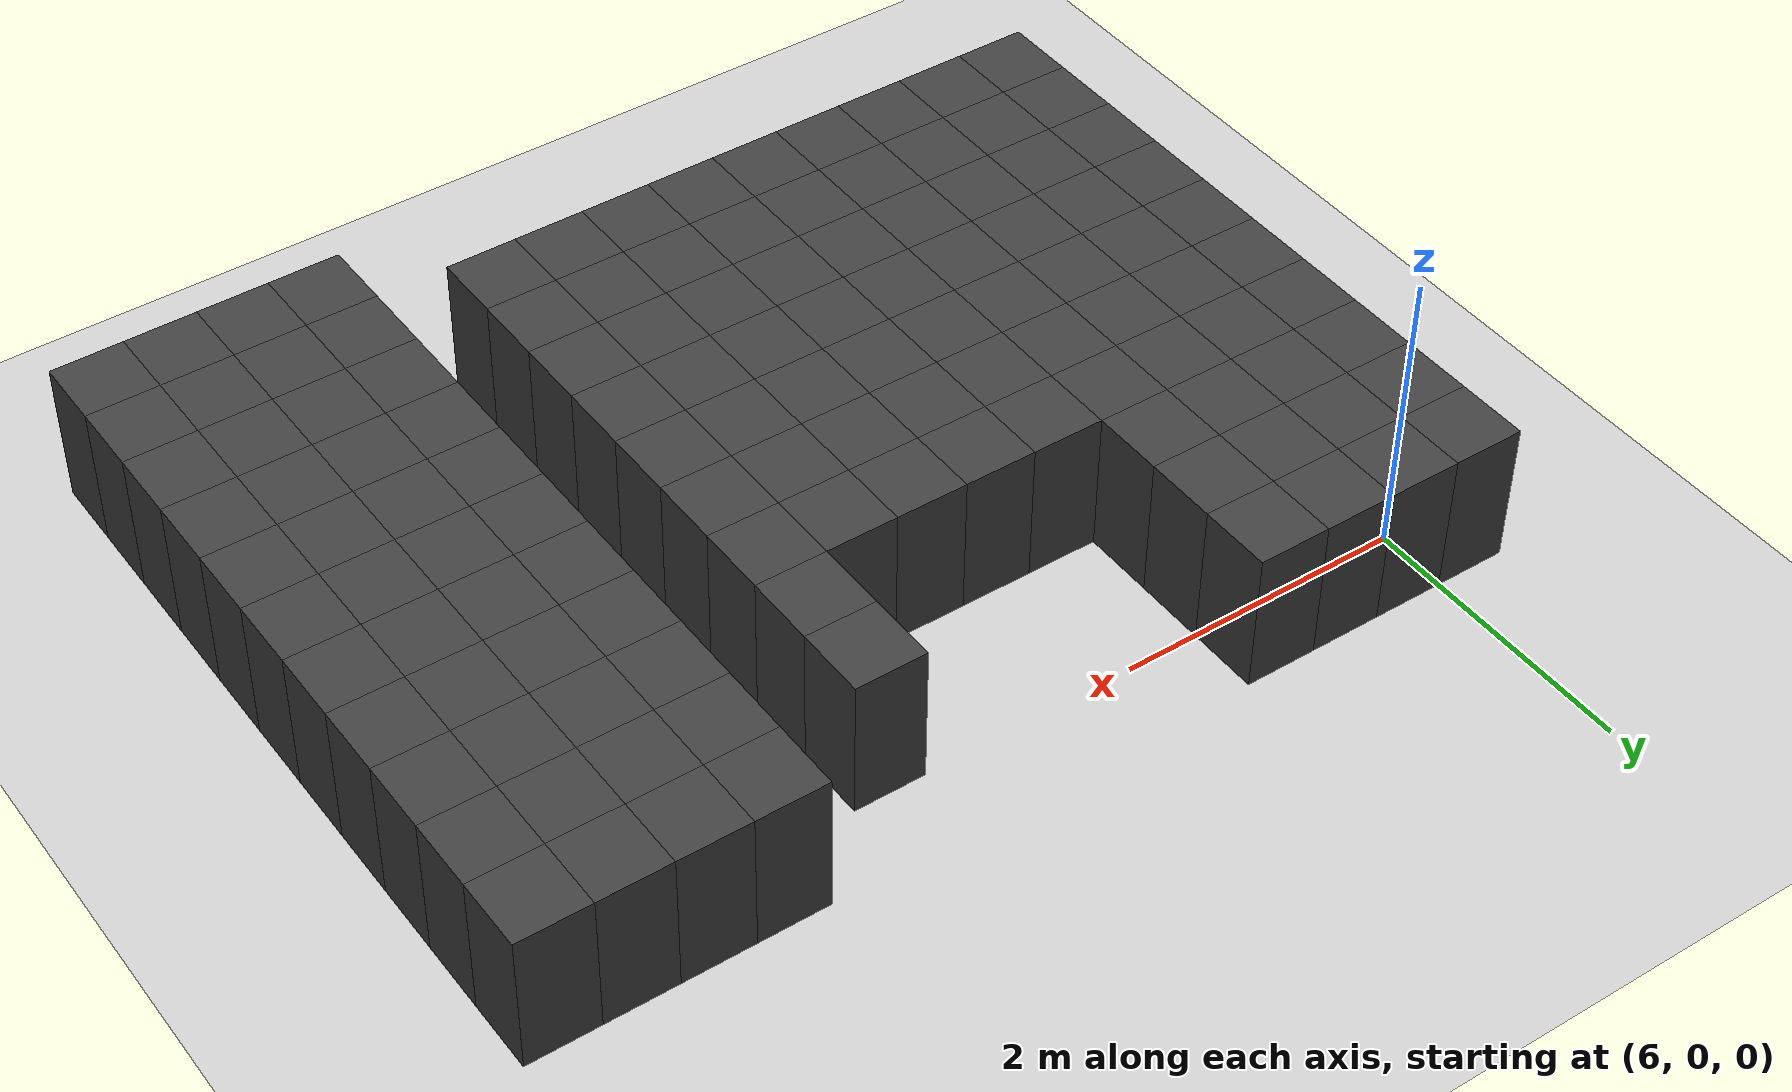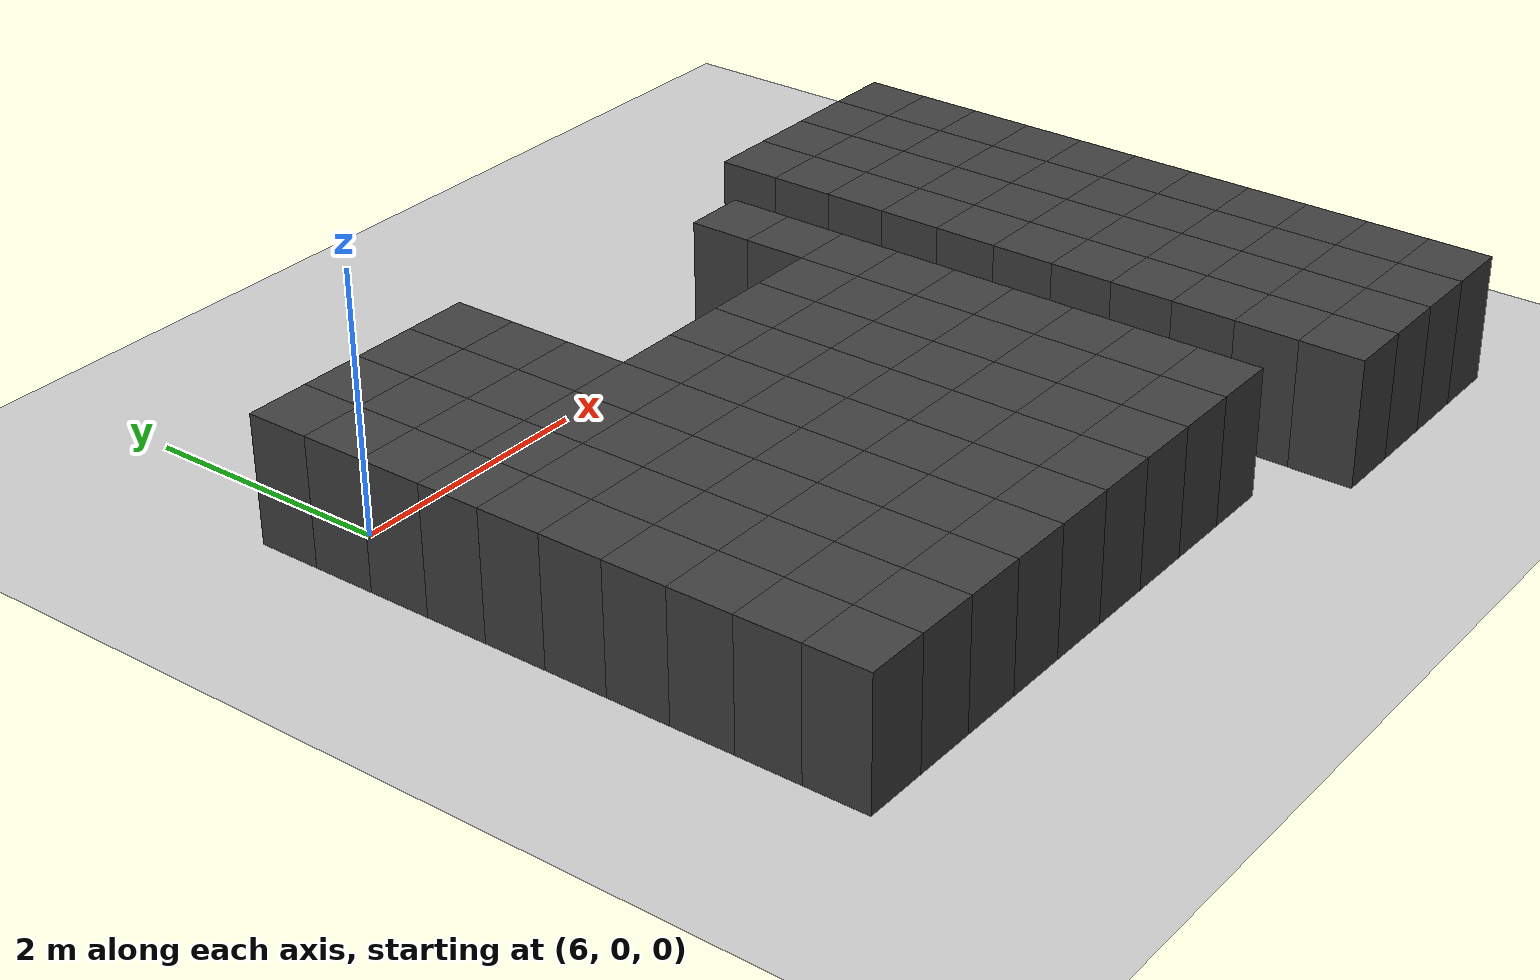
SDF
<sdf version="1.7">
 <world name="map_12885">
  <model name="ground_plane">
   <static>true</static>
   <link name="link">
    <collision name="collision">
     <geometry><plane><normal>0 0 1</normal><size>200 200</size></plane></geometry>
    </collision>
    <visual name="visual">
     <geometry><plane><normal>0 0 1</normal><size>200 200</size></plane></geometry>
     <material><ambient>0.8 0.8 0.8 1</ambient><diffuse>0.8 0.8 0.8 1</diffuse></material>
    </visual>
   </link>
  </model>
  <model name="maze_environment">
   <static>true</static>
   <link name="wall_1039">
    <pose>5.750 0.250 0.500 0 0 0</pose>
    <collision name="col"><geometry><box><size>0.5 0.5 1.0</size></box></geometry></collision>
    <visual name="vis">
     <geometry><box><size>0.5 0.5 1.0</size></box></geometry>
     <material><ambient>0.15 0.15 0.15 1</ambient><diffuse>0.25 0.25 0.25 1</diffuse></material>
    </visual>
   </link>
   <link name="wall_1040">
    <pose>6.250 0.250 0.500 0 0 0</pose>
    <collision name="col"><geometry><box><size>0.5 0.5 1.0</size></box></geometry></collision>
    <visual name="vis">
     <geometry><box><size>0.5 0.5 1.0</size></box></geometry>
     <material><ambient>0.15 0.15 0.15 1</ambient><diffuse>0.25 0.25 0.25 1</diffuse></material>
    </visual>
   </link>
   <link name="wall_1041">
    <pose>6.750 0.250 0.500 0 0 0</pose>
    <collision name="col"><geometry><box><size>0.5 0.5 1.0</size></box></geometry></collision>
    <visual name="vis">
     <geometry><box><size>0.5 0.5 1.0</size></box></geometry>
     <material><ambient>0.15 0.15 0.15 1</ambient><diffuse>0.25 0.25 0.25 1</diffuse></material>
    </visual>
   </link>
   <link name="wall_1042">
    <pose>7.250 0.250 0.500 0 0 0</pose>
    <collision name="col"><geometry><box><size>0.5 0.5 1.0</size></box></geometry></collision>
    <visual name="vis">
     <geometry><box><size>0.5 0.5 1.0</size></box></geometry>
     <material><ambient>0.15 0.15 0.15 1</ambient><diffuse>0.25 0.25 0.25 1</diffuse></material>
    </visual>
   </link>
   <link name="wall_1043">
    <pose>10.750 0.250 0.500 0 0 0</pose>
    <collision name="col"><geometry><box><size>0.5 0.5 1.0</size></box></geometry></collision>
    <visual name="vis">
     <geometry><box><size>0.5 0.5 1.0</size></box></geometry>
     <material><ambient>0.15 0.15 0.15 1</ambient><diffuse>0.25 0.25 0.25 1</diffuse></material>
    </visual>
   </link>
   <link name="wall_1044">
    <pose>11.250 0.250 0.500 0 0 0</pose>
    <collision name="col"><geometry><box><size>0.5 0.5 1.0</size></box></geometry></collision>
    <visual name="vis">
     <geometry><box><size>0.5 0.5 1.0</size></box></geometry>
     <material><ambient>0.15 0.15 0.15 1</ambient><diffuse>0.25 0.25 0.25 1</diffuse></material>
    </visual>
   </link>
   <link name="wall_1045">
    <pose>11.750 0.250 0.500 0 0 0</pose>
    <collision name="col"><geometry><box><size>0.5 0.5 1.0</size></box></geometry></collision>
    <visual name="vis">
     <geometry><box><size>0.5 0.5 1.0</size></box></geometry>
     <material><ambient>0.15 0.15 0.15 1</ambient><diffuse>0.25 0.25 0.25 1</diffuse></material>
    </visual>
   </link>
   <link name="wall_1046">
    <pose>12.250 0.250 0.500 0 0 0</pose>
    <collision name="col"><geometry><box><size>0.5 0.5 1.0</size></box></geometry></collision>
    <visual name="vis">
     <geometry><box><size>0.5 0.5 1.0</size></box></geometry>
     <material><ambient>0.15 0.15 0.15 1</ambient><diffuse>0.25 0.25 0.25 1</diffuse></material>
    </visual>
   </link>
   <link name="wall_1072">
    <pose>5.750 -0.250 0.500 0 0 0</pose>
    <collision name="col"><geometry><box><size>0.5 0.5 1.0</size></box></geometry></collision>
    <visual name="vis">
     <geometry><box><size>0.5 0.5 1.0</size></box></geometry>
     <material><ambient>0.15 0.15 0.15 1</ambient><diffuse>0.25 0.25 0.25 1</diffuse></material>
    </visual>
   </link>
   <link name="wall_1073">
    <pose>6.250 -0.250 0.500 0 0 0</pose>
    <collision name="col"><geometry><box><size>0.5 0.5 1.0</size></box></geometry></collision>
    <visual name="vis">
     <geometry><box><size>0.5 0.5 1.0</size></box></geometry>
     <material><ambient>0.15 0.15 0.15 1</ambient><diffuse>0.25 0.25 0.25 1</diffuse></material>
    </visual>
   </link>
   <link name="wall_1074">
    <pose>6.750 -0.250 0.500 0 0 0</pose>
    <collision name="col"><geometry><box><size>0.5 0.5 1.0</size></box></geometry></collision>
    <visual name="vis">
     <geometry><box><size>0.5 0.5 1.0</size></box></geometry>
     <material><ambient>0.15 0.15 0.15 1</ambient><diffuse>0.25 0.25 0.25 1</diffuse></material>
    </visual>
   </link>
   <link name="wall_1075">
    <pose>7.250 -0.250 0.500 0 0 0</pose>
    <collision name="col"><geometry><box><size>0.5 0.5 1.0</size></box></geometry></collision>
    <visual name="vis">
     <geometry><box><size>0.5 0.5 1.0</size></box></geometry>
     <material><ambient>0.15 0.15 0.15 1</ambient><diffuse>0.25 0.25 0.25 1</diffuse></material>
    </visual>
   </link>
   <link name="wall_1076">
    <pose>9.750 -0.250 0.500 0 0 0</pose>
    <collision name="col"><geometry><box><size>0.5 0.5 1.0</size></box></geometry></collision>
    <visual name="vis">
     <geometry><box><size>0.5 0.5 1.0</size></box></geometry>
     <material><ambient>0.15 0.15 0.15 1</ambient><diffuse>0.25 0.25 0.25 1</diffuse></material>
    </visual>
   </link>
   <link name="wall_1077">
    <pose>10.750 -0.250 0.500 0 0 0</pose>
    <collision name="col"><geometry><box><size>0.5 0.5 1.0</size></box></geometry></collision>
    <visual name="vis">
     <geometry><box><size>0.5 0.5 1.0</size></box></geometry>
     <material><ambient>0.15 0.15 0.15 1</ambient><diffuse>0.25 0.25 0.25 1</diffuse></material>
    </visual>
   </link>
   <link name="wall_1078">
    <pose>11.250 -0.250 0.500 0 0 0</pose>
    <collision name="col"><geometry><box><size>0.5 0.5 1.0</size></box></geometry></collision>
    <visual name="vis">
     <geometry><box><size>0.5 0.5 1.0</size></box></geometry>
     <material><ambient>0.15 0.15 0.15 1</ambient><diffuse>0.25 0.25 0.25 1</diffuse></material>
    </visual>
   </link>
   <link name="wall_1079">
    <pose>11.750 -0.250 0.500 0 0 0</pose>
    <collision name="col"><geometry><box><size>0.5 0.5 1.0</size></box></geometry></collision>
    <visual name="vis">
     <geometry><box><size>0.5 0.5 1.0</size></box></geometry>
     <material><ambient>0.15 0.15 0.15 1</ambient><diffuse>0.25 0.25 0.25 1</diffuse></material>
    </visual>
   </link>
   <link name="wall_1080">
    <pose>12.250 -0.250 0.500 0 0 0</pose>
    <collision name="col"><geometry><box><size>0.5 0.5 1.0</size></box></geometry></collision>
    <visual name="vis">
     <geometry><box><size>0.5 0.5 1.0</size></box></geometry>
     <material><ambient>0.15 0.15 0.15 1</ambient><diffuse>0.25 0.25 0.25 1</diffuse></material>
    </visual>
   </link>
   <link name="wall_1106">
    <pose>5.750 -0.750 0.500 0 0 0</pose>
    <collision name="col"><geometry><box><size>0.5 0.5 1.0</size></box></geometry></collision>
    <visual name="vis">
     <geometry><box><size>0.5 0.5 1.0</size></box></geometry>
     <material><ambient>0.15 0.15 0.15 1</ambient><diffuse>0.25 0.25 0.25 1</diffuse></material>
    </visual>
   </link>
   <link name="wall_1107">
    <pose>6.250 -0.750 0.500 0 0 0</pose>
    <collision name="col"><geometry><box><size>0.5 0.5 1.0</size></box></geometry></collision>
    <visual name="vis">
     <geometry><box><size>0.5 0.5 1.0</size></box></geometry>
     <material><ambient>0.15 0.15 0.15 1</ambient><diffuse>0.25 0.25 0.25 1</diffuse></material>
    </visual>
   </link>
   <link name="wall_1108">
    <pose>6.750 -0.750 0.500 0 0 0</pose>
    <collision name="col"><geometry><box><size>0.5 0.5 1.0</size></box></geometry></collision>
    <visual name="vis">
     <geometry><box><size>0.5 0.5 1.0</size></box></geometry>
     <material><ambient>0.15 0.15 0.15 1</ambient><diffuse>0.25 0.25 0.25 1</diffuse></material>
    </visual>
   </link>
   <link name="wall_1109">
    <pose>7.250 -0.750 0.500 0 0 0</pose>
    <collision name="col"><geometry><box><size>0.5 0.5 1.0</size></box></geometry></collision>
    <visual name="vis">
     <geometry><box><size>0.5 0.5 1.0</size></box></geometry>
     <material><ambient>0.15 0.15 0.15 1</ambient><diffuse>0.25 0.25 0.25 1</diffuse></material>
    </visual>
   </link>
   <link name="wall_1110">
    <pose>9.750 -0.750 0.500 0 0 0</pose>
    <collision name="col"><geometry><box><size>0.5 0.5 1.0</size></box></geometry></collision>
    <visual name="vis">
     <geometry><box><size>0.5 0.5 1.0</size></box></geometry>
     <material><ambient>0.15 0.15 0.15 1</ambient><diffuse>0.25 0.25 0.25 1</diffuse></material>
    </visual>
   </link>
   <link name="wall_1111">
    <pose>10.750 -0.750 0.500 0 0 0</pose>
    <collision name="col"><geometry><box><size>0.5 0.5 1.0</size></box></geometry></collision>
    <visual name="vis">
     <geometry><box><size>0.5 0.5 1.0</size></box></geometry>
     <material><ambient>0.15 0.15 0.15 1</ambient><diffuse>0.25 0.25 0.25 1</diffuse></material>
    </visual>
   </link>
   <link name="wall_1112">
    <pose>11.250 -0.750 0.500 0 0 0</pose>
    <collision name="col"><geometry><box><size>0.5 0.5 1.0</size></box></geometry></collision>
    <visual name="vis">
     <geometry><box><size>0.5 0.5 1.0</size></box></geometry>
     <material><ambient>0.15 0.15 0.15 1</ambient><diffuse>0.25 0.25 0.25 1</diffuse></material>
    </visual>
   </link>
   <link name="wall_1113">
    <pose>11.750 -0.750 0.500 0 0 0</pose>
    <collision name="col"><geometry><box><size>0.5 0.5 1.0</size></box></geometry></collision>
    <visual name="vis">
     <geometry><box><size>0.5 0.5 1.0</size></box></geometry>
     <material><ambient>0.15 0.15 0.15 1</ambient><diffuse>0.25 0.25 0.25 1</diffuse></material>
    </visual>
   </link>
   <link name="wall_1114">
    <pose>12.250 -0.750 0.500 0 0 0</pose>
    <collision name="col"><geometry><box><size>0.5 0.5 1.0</size></box></geometry></collision>
    <visual name="vis">
     <geometry><box><size>0.5 0.5 1.0</size></box></geometry>
     <material><ambient>0.15 0.15 0.15 1</ambient><diffuse>0.25 0.25 0.25 1</diffuse></material>
    </visual>
   </link>
   <link name="wall_1135">
    <pose>5.750 -1.250 0.500 0 0 0</pose>
    <collision name="col"><geometry><box><size>0.5 0.5 1.0</size></box></geometry></collision>
    <visual name="vis">
     <geometry><box><size>0.5 0.5 1.0</size></box></geometry>
     <material><ambient>0.15 0.15 0.15 1</ambient><diffuse>0.25 0.25 0.25 1</diffuse></material>
    </visual>
   </link>
   <link name="wall_1136">
    <pose>6.250 -1.250 0.500 0 0 0</pose>
    <collision name="col"><geometry><box><size>0.5 0.5 1.0</size></box></geometry></collision>
    <visual name="vis">
     <geometry><box><size>0.5 0.5 1.0</size></box></geometry>
     <material><ambient>0.15 0.15 0.15 1</ambient><diffuse>0.25 0.25 0.25 1</diffuse></material>
    </visual>
   </link>
   <link name="wall_1137">
    <pose>6.750 -1.250 0.500 0 0 0</pose>
    <collision name="col"><geometry><box><size>0.5 0.5 1.0</size></box></geometry></collision>
    <visual name="vis">
     <geometry><box><size>0.5 0.5 1.0</size></box></geometry>
     <material><ambient>0.15 0.15 0.15 1</ambient><diffuse>0.25 0.25 0.25 1</diffuse></material>
    </visual>
   </link>
   <link name="wall_1138">
    <pose>7.250 -1.250 0.500 0 0 0</pose>
    <collision name="col"><geometry><box><size>0.5 0.5 1.0</size></box></geometry></collision>
    <visual name="vis">
     <geometry><box><size>0.5 0.5 1.0</size></box></geometry>
     <material><ambient>0.15 0.15 0.15 1</ambient><diffuse>0.25 0.25 0.25 1</diffuse></material>
    </visual>
   </link>
   <link name="wall_1139">
    <pose>7.750 -1.250 0.500 0 0 0</pose>
    <collision name="col"><geometry><box><size>0.5 0.5 1.0</size></box></geometry></collision>
    <visual name="vis">
     <geometry><box><size>0.5 0.5 1.0</size></box></geometry>
     <material><ambient>0.15 0.15 0.15 1</ambient><diffuse>0.25 0.25 0.25 1</diffuse></material>
    </visual>
   </link>
   <link name="wall_1140">
    <pose>8.250 -1.250 0.500 0 0 0</pose>
    <collision name="col"><geometry><box><size>0.5 0.5 1.0</size></box></geometry></collision>
    <visual name="vis">
     <geometry><box><size>0.5 0.5 1.0</size></box></geometry>
     <material><ambient>0.15 0.15 0.15 1</ambient><diffuse>0.25 0.25 0.25 1</diffuse></material>
    </visual>
   </link>
   <link name="wall_1141">
    <pose>8.750 -1.250 0.500 0 0 0</pose>
    <collision name="col"><geometry><box><size>0.5 0.5 1.0</size></box></geometry></collision>
    <visual name="vis">
     <geometry><box><size>0.5 0.5 1.0</size></box></geometry>
     <material><ambient>0.15 0.15 0.15 1</ambient><diffuse>0.25 0.25 0.25 1</diffuse></material>
    </visual>
   </link>
   <link name="wall_1142">
    <pose>9.250 -1.250 0.500 0 0 0</pose>
    <collision name="col"><geometry><box><size>0.5 0.5 1.0</size></box></geometry></collision>
    <visual name="vis">
     <geometry><box><size>0.5 0.5 1.0</size></box></geometry>
     <material><ambient>0.15 0.15 0.15 1</ambient><diffuse>0.25 0.25 0.25 1</diffuse></material>
    </visual>
   </link>
   <link name="wall_1143">
    <pose>9.750 -1.250 0.500 0 0 0</pose>
    <collision name="col"><geometry><box><size>0.5 0.5 1.0</size></box></geometry></collision>
    <visual name="vis">
     <geometry><box><size>0.5 0.5 1.0</size></box></geometry>
     <material><ambient>0.15 0.15 0.15 1</ambient><diffuse>0.25 0.25 0.25 1</diffuse></material>
    </visual>
   </link>
   <link name="wall_1144">
    <pose>10.750 -1.250 0.500 0 0 0</pose>
    <collision name="col"><geometry><box><size>0.5 0.5 1.0</size></box></geometry></collision>
    <visual name="vis">
     <geometry><box><size>0.5 0.5 1.0</size></box></geometry>
     <material><ambient>0.15 0.15 0.15 1</ambient><diffuse>0.25 0.25 0.25 1</diffuse></material>
    </visual>
   </link>
   <link name="wall_1145">
    <pose>11.250 -1.250 0.500 0 0 0</pose>
    <collision name="col"><geometry><box><size>0.5 0.5 1.0</size></box></geometry></collision>
    <visual name="vis">
     <geometry><box><size>0.5 0.5 1.0</size></box></geometry>
     <material><ambient>0.15 0.15 0.15 1</ambient><diffuse>0.25 0.25 0.25 1</diffuse></material>
    </visual>
   </link>
   <link name="wall_1146">
    <pose>11.750 -1.250 0.500 0 0 0</pose>
    <collision name="col"><geometry><box><size>0.5 0.5 1.0</size></box></geometry></collision>
    <visual name="vis">
     <geometry><box><size>0.5 0.5 1.0</size></box></geometry>
     <material><ambient>0.15 0.15 0.15 1</ambient><diffuse>0.25 0.25 0.25 1</diffuse></material>
    </visual>
   </link>
   <link name="wall_1147">
    <pose>12.250 -1.250 0.500 0 0 0</pose>
    <collision name="col"><geometry><box><size>0.5 0.5 1.0</size></box></geometry></collision>
    <visual name="vis">
     <geometry><box><size>0.5 0.5 1.0</size></box></geometry>
     <material><ambient>0.15 0.15 0.15 1</ambient><diffuse>0.25 0.25 0.25 1</diffuse></material>
    </visual>
   </link>
   <link name="wall_1180">
    <pose>5.750 -1.750 0.500 0 0 0</pose>
    <collision name="col"><geometry><box><size>0.5 0.5 1.0</size></box></geometry></collision>
    <visual name="vis">
     <geometry><box><size>0.5 0.5 1.0</size></box></geometry>
     <material><ambient>0.15 0.15 0.15 1</ambient><diffuse>0.25 0.25 0.25 1</diffuse></material>
    </visual>
   </link>
   <link name="wall_1181">
    <pose>6.250 -1.750 0.500 0 0 0</pose>
    <collision name="col"><geometry><box><size>0.5 0.5 1.0</size></box></geometry></collision>
    <visual name="vis">
     <geometry><box><size>0.5 0.5 1.0</size></box></geometry>
     <material><ambient>0.15 0.15 0.15 1</ambient><diffuse>0.25 0.25 0.25 1</diffuse></material>
    </visual>
   </link>
   <link name="wall_1182">
    <pose>6.750 -1.750 0.500 0 0 0</pose>
    <collision name="col"><geometry><box><size>0.5 0.5 1.0</size></box></geometry></collision>
    <visual name="vis">
     <geometry><box><size>0.5 0.5 1.0</size></box></geometry>
     <material><ambient>0.15 0.15 0.15 1</ambient><diffuse>0.25 0.25 0.25 1</diffuse></material>
    </visual>
   </link>
   <link name="wall_1183">
    <pose>7.250 -1.750 0.500 0 0 0</pose>
    <collision name="col"><geometry><box><size>0.5 0.5 1.0</size></box></geometry></collision>
    <visual name="vis">
     <geometry><box><size>0.5 0.5 1.0</size></box></geometry>
     <material><ambient>0.15 0.15 0.15 1</ambient><diffuse>0.25 0.25 0.25 1</diffuse></material>
    </visual>
   </link>
   <link name="wall_1184">
    <pose>7.750 -1.750 0.500 0 0 0</pose>
    <collision name="col"><geometry><box><size>0.5 0.5 1.0</size></box></geometry></collision>
    <visual name="vis">
     <geometry><box><size>0.5 0.5 1.0</size></box></geometry>
     <material><ambient>0.15 0.15 0.15 1</ambient><diffuse>0.25 0.25 0.25 1</diffuse></material>
    </visual>
   </link>
   <link name="wall_1185">
    <pose>8.250 -1.750 0.500 0 0 0</pose>
    <collision name="col"><geometry><box><size>0.5 0.5 1.0</size></box></geometry></collision>
    <visual name="vis">
     <geometry><box><size>0.5 0.5 1.0</size></box></geometry>
     <material><ambient>0.15 0.15 0.15 1</ambient><diffuse>0.25 0.25 0.25 1</diffuse></material>
    </visual>
   </link>
   <link name="wall_1186">
    <pose>8.750 -1.750 0.500 0 0 0</pose>
    <collision name="col"><geometry><box><size>0.5 0.5 1.0</size></box></geometry></collision>
    <visual name="vis">
     <geometry><box><size>0.5 0.5 1.0</size></box></geometry>
     <material><ambient>0.15 0.15 0.15 1</ambient><diffuse>0.25 0.25 0.25 1</diffuse></material>
    </visual>
   </link>
   <link name="wall_1187">
    <pose>9.250 -1.750 0.500 0 0 0</pose>
    <collision name="col"><geometry><box><size>0.5 0.5 1.0</size></box></geometry></collision>
    <visual name="vis">
     <geometry><box><size>0.5 0.5 1.0</size></box></geometry>
     <material><ambient>0.15 0.15 0.15 1</ambient><diffuse>0.25 0.25 0.25 1</diffuse></material>
    </visual>
   </link>
   <link name="wall_1188">
    <pose>9.750 -1.750 0.500 0 0 0</pose>
    <collision name="col"><geometry><box><size>0.5 0.5 1.0</size></box></geometry></collision>
    <visual name="vis">
     <geometry><box><size>0.5 0.5 1.0</size></box></geometry>
     <material><ambient>0.15 0.15 0.15 1</ambient><diffuse>0.25 0.25 0.25 1</diffuse></material>
    </visual>
   </link>
   <link name="wall_1189">
    <pose>10.750 -1.750 0.500 0 0 0</pose>
    <collision name="col"><geometry><box><size>0.5 0.5 1.0</size></box></geometry></collision>
    <visual name="vis">
     <geometry><box><size>0.5 0.5 1.0</size></box></geometry>
     <material><ambient>0.15 0.15 0.15 1</ambient><diffuse>0.25 0.25 0.25 1</diffuse></material>
    </visual>
   </link>
   <link name="wall_1190">
    <pose>11.250 -1.750 0.500 0 0 0</pose>
    <collision name="col"><geometry><box><size>0.5 0.5 1.0</size></box></geometry></collision>
    <visual name="vis">
     <geometry><box><size>0.5 0.5 1.0</size></box></geometry>
     <material><ambient>0.15 0.15 0.15 1</ambient><diffuse>0.25 0.25 0.25 1</diffuse></material>
    </visual>
   </link>
   <link name="wall_1191">
    <pose>11.750 -1.750 0.500 0 0 0</pose>
    <collision name="col"><geometry><box><size>0.5 0.5 1.0</size></box></geometry></collision>
    <visual name="vis">
     <geometry><box><size>0.5 0.5 1.0</size></box></geometry>
     <material><ambient>0.15 0.15 0.15 1</ambient><diffuse>0.25 0.25 0.25 1</diffuse></material>
    </visual>
   </link>
   <link name="wall_1192">
    <pose>12.250 -1.750 0.500 0 0 0</pose>
    <collision name="col"><geometry><box><size>0.5 0.5 1.0</size></box></geometry></collision>
    <visual name="vis">
     <geometry><box><size>0.5 0.5 1.0</size></box></geometry>
     <material><ambient>0.15 0.15 0.15 1</ambient><diffuse>0.25 0.25 0.25 1</diffuse></material>
    </visual>
   </link>
   <link name="wall_1221">
    <pose>5.750 -2.250 0.500 0 0 0</pose>
    <collision name="col"><geometry><box><size>0.5 0.5 1.0</size></box></geometry></collision>
    <visual name="vis">
     <geometry><box><size>0.5 0.5 1.0</size></box></geometry>
     <material><ambient>0.15 0.15 0.15 1</ambient><diffuse>0.25 0.25 0.25 1</diffuse></material>
    </visual>
   </link>
   <link name="wall_1222">
    <pose>6.250 -2.250 0.500 0 0 0</pose>
    <collision name="col"><geometry><box><size>0.5 0.5 1.0</size></box></geometry></collision>
    <visual name="vis">
     <geometry><box><size>0.5 0.5 1.0</size></box></geometry>
     <material><ambient>0.15 0.15 0.15 1</ambient><diffuse>0.25 0.25 0.25 1</diffuse></material>
    </visual>
   </link>
   <link name="wall_1223">
    <pose>6.750 -2.250 0.500 0 0 0</pose>
    <collision name="col"><geometry><box><size>0.5 0.5 1.0</size></box></geometry></collision>
    <visual name="vis">
     <geometry><box><size>0.5 0.5 1.0</size></box></geometry>
     <material><ambient>0.15 0.15 0.15 1</ambient><diffuse>0.25 0.25 0.25 1</diffuse></material>
    </visual>
   </link>
   <link name="wall_1224">
    <pose>7.250 -2.250 0.500 0 0 0</pose>
    <collision name="col"><geometry><box><size>0.5 0.5 1.0</size></box></geometry></collision>
    <visual name="vis">
     <geometry><box><size>0.5 0.5 1.0</size></box></geometry>
     <material><ambient>0.15 0.15 0.15 1</ambient><diffuse>0.25 0.25 0.25 1</diffuse></material>
    </visual>
   </link>
   <link name="wall_1225">
    <pose>7.750 -2.250 0.500 0 0 0</pose>
    <collision name="col"><geometry><box><size>0.5 0.5 1.0</size></box></geometry></collision>
    <visual name="vis">
     <geometry><box><size>0.5 0.5 1.0</size></box></geometry>
     <material><ambient>0.15 0.15 0.15 1</ambient><diffuse>0.25 0.25 0.25 1</diffuse></material>
    </visual>
   </link>
   <link name="wall_1226">
    <pose>8.250 -2.250 0.500 0 0 0</pose>
    <collision name="col"><geometry><box><size>0.5 0.5 1.0</size></box></geometry></collision>
    <visual name="vis">
     <geometry><box><size>0.5 0.5 1.0</size></box></geometry>
     <material><ambient>0.15 0.15 0.15 1</ambient><diffuse>0.25 0.25 0.25 1</diffuse></material>
    </visual>
   </link>
   <link name="wall_1227">
    <pose>8.750 -2.250 0.500 0 0 0</pose>
    <collision name="col"><geometry><box><size>0.5 0.5 1.0</size></box></geometry></collision>
    <visual name="vis">
     <geometry><box><size>0.5 0.5 1.0</size></box></geometry>
     <material><ambient>0.15 0.15 0.15 1</ambient><diffuse>0.25 0.25 0.25 1</diffuse></material>
    </visual>
   </link>
   <link name="wall_1228">
    <pose>9.250 -2.250 0.500 0 0 0</pose>
    <collision name="col"><geometry><box><size>0.5 0.5 1.0</size></box></geometry></collision>
    <visual name="vis">
     <geometry><box><size>0.5 0.5 1.0</size></box></geometry>
     <material><ambient>0.15 0.15 0.15 1</ambient><diffuse>0.25 0.25 0.25 1</diffuse></material>
    </visual>
   </link>
   <link name="wall_1229">
    <pose>9.750 -2.250 0.500 0 0 0</pose>
    <collision name="col"><geometry><box><size>0.5 0.5 1.0</size></box></geometry></collision>
    <visual name="vis">
     <geometry><box><size>0.5 0.5 1.0</size></box></geometry>
     <material><ambient>0.15 0.15 0.15 1</ambient><diffuse>0.25 0.25 0.25 1</diffuse></material>
    </visual>
   </link>
   <link name="wall_1230">
    <pose>10.750 -2.250 0.500 0 0 0</pose>
    <collision name="col"><geometry><box><size>0.5 0.5 1.0</size></box></geometry></collision>
    <visual name="vis">
     <geometry><box><size>0.5 0.5 1.0</size></box></geometry>
     <material><ambient>0.15 0.15 0.15 1</ambient><diffuse>0.25 0.25 0.25 1</diffuse></material>
    </visual>
   </link>
   <link name="wall_1231">
    <pose>11.250 -2.250 0.500 0 0 0</pose>
    <collision name="col"><geometry><box><size>0.5 0.5 1.0</size></box></geometry></collision>
    <visual name="vis">
     <geometry><box><size>0.5 0.5 1.0</size></box></geometry>
     <material><ambient>0.15 0.15 0.15 1</ambient><diffuse>0.25 0.25 0.25 1</diffuse></material>
    </visual>
   </link>
   <link name="wall_1232">
    <pose>11.750 -2.250 0.500 0 0 0</pose>
    <collision name="col"><geometry><box><size>0.5 0.5 1.0</size></box></geometry></collision>
    <visual name="vis">
     <geometry><box><size>0.5 0.5 1.0</size></box></geometry>
     <material><ambient>0.15 0.15 0.15 1</ambient><diffuse>0.25 0.25 0.25 1</diffuse></material>
    </visual>
   </link>
   <link name="wall_1233">
    <pose>12.250 -2.250 0.500 0 0 0</pose>
    <collision name="col"><geometry><box><size>0.5 0.5 1.0</size></box></geometry></collision>
    <visual name="vis">
     <geometry><box><size>0.5 0.5 1.0</size></box></geometry>
     <material><ambient>0.15 0.15 0.15 1</ambient><diffuse>0.25 0.25 0.25 1</diffuse></material>
    </visual>
   </link>
   <link name="wall_1262">
    <pose>5.750 -2.750 0.500 0 0 0</pose>
    <collision name="col"><geometry><box><size>0.5 0.5 1.0</size></box></geometry></collision>
    <visual name="vis">
     <geometry><box><size>0.5 0.5 1.0</size></box></geometry>
     <material><ambient>0.15 0.15 0.15 1</ambient><diffuse>0.25 0.25 0.25 1</diffuse></material>
    </visual>
   </link>
   <link name="wall_1263">
    <pose>6.250 -2.750 0.500 0 0 0</pose>
    <collision name="col"><geometry><box><size>0.5 0.5 1.0</size></box></geometry></collision>
    <visual name="vis">
     <geometry><box><size>0.5 0.5 1.0</size></box></geometry>
     <material><ambient>0.15 0.15 0.15 1</ambient><diffuse>0.25 0.25 0.25 1</diffuse></material>
    </visual>
   </link>
   <link name="wall_1264">
    <pose>6.750 -2.750 0.500 0 0 0</pose>
    <collision name="col"><geometry><box><size>0.5 0.5 1.0</size></box></geometry></collision>
    <visual name="vis">
     <geometry><box><size>0.5 0.5 1.0</size></box></geometry>
     <material><ambient>0.15 0.15 0.15 1</ambient><diffuse>0.25 0.25 0.25 1</diffuse></material>
    </visual>
   </link>
   <link name="wall_1265">
    <pose>7.250 -2.750 0.500 0 0 0</pose>
    <collision name="col"><geometry><box><size>0.5 0.5 1.0</size></box></geometry></collision>
    <visual name="vis">
     <geometry><box><size>0.5 0.5 1.0</size></box></geometry>
     <material><ambient>0.15 0.15 0.15 1</ambient><diffuse>0.25 0.25 0.25 1</diffuse></material>
    </visual>
   </link>
   <link name="wall_1266">
    <pose>7.750 -2.750 0.500 0 0 0</pose>
    <collision name="col"><geometry><box><size>0.5 0.5 1.0</size></box></geometry></collision>
    <visual name="vis">
     <geometry><box><size>0.5 0.5 1.0</size></box></geometry>
     <material><ambient>0.15 0.15 0.15 1</ambient><diffuse>0.25 0.25 0.25 1</diffuse></material>
    </visual>
   </link>
   <link name="wall_1267">
    <pose>8.250 -2.750 0.500 0 0 0</pose>
    <collision name="col"><geometry><box><size>0.5 0.5 1.0</size></box></geometry></collision>
    <visual name="vis">
     <geometry><box><size>0.5 0.5 1.0</size></box></geometry>
     <material><ambient>0.15 0.15 0.15 1</ambient><diffuse>0.25 0.25 0.25 1</diffuse></material>
    </visual>
   </link>
   <link name="wall_1268">
    <pose>8.750 -2.750 0.500 0 0 0</pose>
    <collision name="col"><geometry><box><size>0.5 0.5 1.0</size></box></geometry></collision>
    <visual name="vis">
     <geometry><box><size>0.5 0.5 1.0</size></box></geometry>
     <material><ambient>0.15 0.15 0.15 1</ambient><diffuse>0.25 0.25 0.25 1</diffuse></material>
    </visual>
   </link>
   <link name="wall_1269">
    <pose>9.250 -2.750 0.500 0 0 0</pose>
    <collision name="col"><geometry><box><size>0.5 0.5 1.0</size></box></geometry></collision>
    <visual name="vis">
     <geometry><box><size>0.5 0.5 1.0</size></box></geometry>
     <material><ambient>0.15 0.15 0.15 1</ambient><diffuse>0.25 0.25 0.25 1</diffuse></material>
    </visual>
   </link>
   <link name="wall_1270">
    <pose>9.750 -2.750 0.500 0 0 0</pose>
    <collision name="col"><geometry><box><size>0.5 0.5 1.0</size></box></geometry></collision>
    <visual name="vis">
     <geometry><box><size>0.5 0.5 1.0</size></box></geometry>
     <material><ambient>0.15 0.15 0.15 1</ambient><diffuse>0.25 0.25 0.25 1</diffuse></material>
    </visual>
   </link>
   <link name="wall_1271">
    <pose>10.750 -2.750 0.500 0 0 0</pose>
    <collision name="col"><geometry><box><size>0.5 0.5 1.0</size></box></geometry></collision>
    <visual name="vis">
     <geometry><box><size>0.5 0.5 1.0</size></box></geometry>
     <material><ambient>0.15 0.15 0.15 1</ambient><diffuse>0.25 0.25 0.25 1</diffuse></material>
    </visual>
   </link>
   <link name="wall_1272">
    <pose>11.250 -2.750 0.500 0 0 0</pose>
    <collision name="col"><geometry><box><size>0.5 0.5 1.0</size></box></geometry></collision>
    <visual name="vis">
     <geometry><box><size>0.5 0.5 1.0</size></box></geometry>
     <material><ambient>0.15 0.15 0.15 1</ambient><diffuse>0.25 0.25 0.25 1</diffuse></material>
    </visual>
   </link>
   <link name="wall_1273">
    <pose>11.750 -2.750 0.500 0 0 0</pose>
    <collision name="col"><geometry><box><size>0.5 0.5 1.0</size></box></geometry></collision>
    <visual name="vis">
     <geometry><box><size>0.5 0.5 1.0</size></box></geometry>
     <material><ambient>0.15 0.15 0.15 1</ambient><diffuse>0.25 0.25 0.25 1</diffuse></material>
    </visual>
   </link>
   <link name="wall_1274">
    <pose>12.250 -2.750 0.500 0 0 0</pose>
    <collision name="col"><geometry><box><size>0.5 0.5 1.0</size></box></geometry></collision>
    <visual name="vis">
     <geometry><box><size>0.5 0.5 1.0</size></box></geometry>
     <material><ambient>0.15 0.15 0.15 1</ambient><diffuse>0.25 0.25 0.25 1</diffuse></material>
    </visual>
   </link>
   <link name="wall_1303">
    <pose>5.750 -3.250 0.500 0 0 0</pose>
    <collision name="col"><geometry><box><size>0.5 0.5 1.0</size></box></geometry></collision>
    <visual name="vis">
     <geometry><box><size>0.5 0.5 1.0</size></box></geometry>
     <material><ambient>0.15 0.15 0.15 1</ambient><diffuse>0.25 0.25 0.25 1</diffuse></material>
    </visual>
   </link>
   <link name="wall_1304">
    <pose>6.250 -3.250 0.500 0 0 0</pose>
    <collision name="col"><geometry><box><size>0.5 0.5 1.0</size></box></geometry></collision>
    <visual name="vis">
     <geometry><box><size>0.5 0.5 1.0</size></box></geometry>
     <material><ambient>0.15 0.15 0.15 1</ambient><diffuse>0.25 0.25 0.25 1</diffuse></material>
    </visual>
   </link>
   <link name="wall_1305">
    <pose>6.750 -3.250 0.500 0 0 0</pose>
    <collision name="col"><geometry><box><size>0.5 0.5 1.0</size></box></geometry></collision>
    <visual name="vis">
     <geometry><box><size>0.5 0.5 1.0</size></box></geometry>
     <material><ambient>0.15 0.15 0.15 1</ambient><diffuse>0.25 0.25 0.25 1</diffuse></material>
    </visual>
   </link>
   <link name="wall_1306">
    <pose>7.250 -3.250 0.500 0 0 0</pose>
    <collision name="col"><geometry><box><size>0.5 0.5 1.0</size></box></geometry></collision>
    <visual name="vis">
     <geometry><box><size>0.5 0.5 1.0</size></box></geometry>
     <material><ambient>0.15 0.15 0.15 1</ambient><diffuse>0.25 0.25 0.25 1</diffuse></material>
    </visual>
   </link>
   <link name="wall_1307">
    <pose>7.750 -3.250 0.500 0 0 0</pose>
    <collision name="col"><geometry><box><size>0.5 0.5 1.0</size></box></geometry></collision>
    <visual name="vis">
     <geometry><box><size>0.5 0.5 1.0</size></box></geometry>
     <material><ambient>0.15 0.15 0.15 1</ambient><diffuse>0.25 0.25 0.25 1</diffuse></material>
    </visual>
   </link>
   <link name="wall_1308">
    <pose>8.250 -3.250 0.500 0 0 0</pose>
    <collision name="col"><geometry><box><size>0.5 0.5 1.0</size></box></geometry></collision>
    <visual name="vis">
     <geometry><box><size>0.5 0.5 1.0</size></box></geometry>
     <material><ambient>0.15 0.15 0.15 1</ambient><diffuse>0.25 0.25 0.25 1</diffuse></material>
    </visual>
   </link>
   <link name="wall_1309">
    <pose>8.750 -3.250 0.500 0 0 0</pose>
    <collision name="col"><geometry><box><size>0.5 0.5 1.0</size></box></geometry></collision>
    <visual name="vis">
     <geometry><box><size>0.5 0.5 1.0</size></box></geometry>
     <material><ambient>0.15 0.15 0.15 1</ambient><diffuse>0.25 0.25 0.25 1</diffuse></material>
    </visual>
   </link>
   <link name="wall_1310">
    <pose>9.250 -3.250 0.500 0 0 0</pose>
    <collision name="col"><geometry><box><size>0.5 0.5 1.0</size></box></geometry></collision>
    <visual name="vis">
     <geometry><box><size>0.5 0.5 1.0</size></box></geometry>
     <material><ambient>0.15 0.15 0.15 1</ambient><diffuse>0.25 0.25 0.25 1</diffuse></material>
    </visual>
   </link>
   <link name="wall_1311">
    <pose>9.750 -3.250 0.500 0 0 0</pose>
    <collision name="col"><geometry><box><size>0.5 0.5 1.0</size></box></geometry></collision>
    <visual name="vis">
     <geometry><box><size>0.5 0.5 1.0</size></box></geometry>
     <material><ambient>0.15 0.15 0.15 1</ambient><diffuse>0.25 0.25 0.25 1</diffuse></material>
    </visual>
   </link>
   <link name="wall_1312">
    <pose>10.750 -3.250 0.500 0 0 0</pose>
    <collision name="col"><geometry><box><size>0.5 0.5 1.0</size></box></geometry></collision>
    <visual name="vis">
     <geometry><box><size>0.5 0.5 1.0</size></box></geometry>
     <material><ambient>0.15 0.15 0.15 1</ambient><diffuse>0.25 0.25 0.25 1</diffuse></material>
    </visual>
   </link>
   <link name="wall_1313">
    <pose>11.250 -3.250 0.500 0 0 0</pose>
    <collision name="col"><geometry><box><size>0.5 0.5 1.0</size></box></geometry></collision>
    <visual name="vis">
     <geometry><box><size>0.5 0.5 1.0</size></box></geometry>
     <material><ambient>0.15 0.15 0.15 1</ambient><diffuse>0.25 0.25 0.25 1</diffuse></material>
    </visual>
   </link>
   <link name="wall_1314">
    <pose>11.750 -3.250 0.500 0 0 0</pose>
    <collision name="col"><geometry><box><size>0.5 0.5 1.0</size></box></geometry></collision>
    <visual name="vis">
     <geometry><box><size>0.5 0.5 1.0</size></box></geometry>
     <material><ambient>0.15 0.15 0.15 1</ambient><diffuse>0.25 0.25 0.25 1</diffuse></material>
    </visual>
   </link>
   <link name="wall_1315">
    <pose>12.250 -3.250 0.500 0 0 0</pose>
    <collision name="col"><geometry><box><size>0.5 0.5 1.0</size></box></geometry></collision>
    <visual name="vis">
     <geometry><box><size>0.5 0.5 1.0</size></box></geometry>
     <material><ambient>0.15 0.15 0.15 1</ambient><diffuse>0.25 0.25 0.25 1</diffuse></material>
    </visual>
   </link>
   <link name="wall_1344">
    <pose>5.750 -3.750 0.500 0 0 0</pose>
    <collision name="col"><geometry><box><size>0.5 0.5 1.0</size></box></geometry></collision>
    <visual name="vis">
     <geometry><box><size>0.5 0.5 1.0</size></box></geometry>
     <material><ambient>0.15 0.15 0.15 1</ambient><diffuse>0.25 0.25 0.25 1</diffuse></material>
    </visual>
   </link>
   <link name="wall_1345">
    <pose>6.250 -3.750 0.500 0 0 0</pose>
    <collision name="col"><geometry><box><size>0.5 0.5 1.0</size></box></geometry></collision>
    <visual name="vis">
     <geometry><box><size>0.5 0.5 1.0</size></box></geometry>
     <material><ambient>0.15 0.15 0.15 1</ambient><diffuse>0.25 0.25 0.25 1</diffuse></material>
    </visual>
   </link>
   <link name="wall_1346">
    <pose>6.750 -3.750 0.500 0 0 0</pose>
    <collision name="col"><geometry><box><size>0.5 0.5 1.0</size></box></geometry></collision>
    <visual name="vis">
     <geometry><box><size>0.5 0.5 1.0</size></box></geometry>
     <material><ambient>0.15 0.15 0.15 1</ambient><diffuse>0.25 0.25 0.25 1</diffuse></material>
    </visual>
   </link>
   <link name="wall_1347">
    <pose>7.250 -3.750 0.500 0 0 0</pose>
    <collision name="col"><geometry><box><size>0.5 0.5 1.0</size></box></geometry></collision>
    <visual name="vis">
     <geometry><box><size>0.5 0.5 1.0</size></box></geometry>
     <material><ambient>0.15 0.15 0.15 1</ambient><diffuse>0.25 0.25 0.25 1</diffuse></material>
    </visual>
   </link>
   <link name="wall_1348">
    <pose>7.750 -3.750 0.500 0 0 0</pose>
    <collision name="col"><geometry><box><size>0.5 0.5 1.0</size></box></geometry></collision>
    <visual name="vis">
     <geometry><box><size>0.5 0.5 1.0</size></box></geometry>
     <material><ambient>0.15 0.15 0.15 1</ambient><diffuse>0.25 0.25 0.25 1</diffuse></material>
    </visual>
   </link>
   <link name="wall_1349">
    <pose>8.250 -3.750 0.500 0 0 0</pose>
    <collision name="col"><geometry><box><size>0.5 0.5 1.0</size></box></geometry></collision>
    <visual name="vis">
     <geometry><box><size>0.5 0.5 1.0</size></box></geometry>
     <material><ambient>0.15 0.15 0.15 1</ambient><diffuse>0.25 0.25 0.25 1</diffuse></material>
    </visual>
   </link>
   <link name="wall_1350">
    <pose>8.750 -3.750 0.500 0 0 0</pose>
    <collision name="col"><geometry><box><size>0.5 0.5 1.0</size></box></geometry></collision>
    <visual name="vis">
     <geometry><box><size>0.5 0.5 1.0</size></box></geometry>
     <material><ambient>0.15 0.15 0.15 1</ambient><diffuse>0.25 0.25 0.25 1</diffuse></material>
    </visual>
   </link>
   <link name="wall_1351">
    <pose>9.250 -3.750 0.500 0 0 0</pose>
    <collision name="col"><geometry><box><size>0.5 0.5 1.0</size></box></geometry></collision>
    <visual name="vis">
     <geometry><box><size>0.5 0.5 1.0</size></box></geometry>
     <material><ambient>0.15 0.15 0.15 1</ambient><diffuse>0.25 0.25 0.25 1</diffuse></material>
    </visual>
   </link>
   <link name="wall_1352">
    <pose>9.750 -3.750 0.500 0 0 0</pose>
    <collision name="col"><geometry><box><size>0.5 0.5 1.0</size></box></geometry></collision>
    <visual name="vis">
     <geometry><box><size>0.5 0.5 1.0</size></box></geometry>
     <material><ambient>0.15 0.15 0.15 1</ambient><diffuse>0.25 0.25 0.25 1</diffuse></material>
    </visual>
   </link>
   <link name="wall_1353">
    <pose>10.750 -3.750 0.500 0 0 0</pose>
    <collision name="col"><geometry><box><size>0.5 0.5 1.0</size></box></geometry></collision>
    <visual name="vis">
     <geometry><box><size>0.5 0.5 1.0</size></box></geometry>
     <material><ambient>0.15 0.15 0.15 1</ambient><diffuse>0.25 0.25 0.25 1</diffuse></material>
    </visual>
   </link>
   <link name="wall_1354">
    <pose>11.250 -3.750 0.500 0 0 0</pose>
    <collision name="col"><geometry><box><size>0.5 0.5 1.0</size></box></geometry></collision>
    <visual name="vis">
     <geometry><box><size>0.5 0.5 1.0</size></box></geometry>
     <material><ambient>0.15 0.15 0.15 1</ambient><diffuse>0.25 0.25 0.25 1</diffuse></material>
    </visual>
   </link>
   <link name="wall_1355">
    <pose>11.750 -3.750 0.500 0 0 0</pose>
    <collision name="col"><geometry><box><size>0.5 0.5 1.0</size></box></geometry></collision>
    <visual name="vis">
     <geometry><box><size>0.5 0.5 1.0</size></box></geometry>
     <material><ambient>0.15 0.15 0.15 1</ambient><diffuse>0.25 0.25 0.25 1</diffuse></material>
    </visual>
   </link>
   <link name="wall_1356">
    <pose>12.250 -3.750 0.500 0 0 0</pose>
    <collision name="col"><geometry><box><size>0.5 0.5 1.0</size></box></geometry></collision>
    <visual name="vis">
     <geometry><box><size>0.5 0.5 1.0</size></box></geometry>
     <material><ambient>0.15 0.15 0.15 1</ambient><diffuse>0.25 0.25 0.25 1</diffuse></material>
    </visual>
   </link>
   <link name="wall_1385">
    <pose>5.750 -4.250 0.500 0 0 0</pose>
    <collision name="col"><geometry><box><size>0.5 0.5 1.0</size></box></geometry></collision>
    <visual name="vis">
     <geometry><box><size>0.5 0.5 1.0</size></box></geometry>
     <material><ambient>0.15 0.15 0.15 1</ambient><diffuse>0.25 0.25 0.25 1</diffuse></material>
    </visual>
   </link>
   <link name="wall_1386">
    <pose>6.250 -4.250 0.500 0 0 0</pose>
    <collision name="col"><geometry><box><size>0.5 0.5 1.0</size></box></geometry></collision>
    <visual name="vis">
     <geometry><box><size>0.5 0.5 1.0</size></box></geometry>
     <material><ambient>0.15 0.15 0.15 1</ambient><diffuse>0.25 0.25 0.25 1</diffuse></material>
    </visual>
   </link>
   <link name="wall_1387">
    <pose>6.750 -4.250 0.500 0 0 0</pose>
    <collision name="col"><geometry><box><size>0.5 0.5 1.0</size></box></geometry></collision>
    <visual name="vis">
     <geometry><box><size>0.5 0.5 1.0</size></box></geometry>
     <material><ambient>0.15 0.15 0.15 1</ambient><diffuse>0.25 0.25 0.25 1</diffuse></material>
    </visual>
   </link>
   <link name="wall_1388">
    <pose>7.250 -4.250 0.500 0 0 0</pose>
    <collision name="col"><geometry><box><size>0.5 0.5 1.0</size></box></geometry></collision>
    <visual name="vis">
     <geometry><box><size>0.5 0.5 1.0</size></box></geometry>
     <material><ambient>0.15 0.15 0.15 1</ambient><diffuse>0.25 0.25 0.25 1</diffuse></material>
    </visual>
   </link>
   <link name="wall_1389">
    <pose>7.750 -4.250 0.500 0 0 0</pose>
    <collision name="col"><geometry><box><size>0.5 0.5 1.0</size></box></geometry></collision>
    <visual name="vis">
     <geometry><box><size>0.5 0.5 1.0</size></box></geometry>
     <material><ambient>0.15 0.15 0.15 1</ambient><diffuse>0.25 0.25 0.25 1</diffuse></material>
    </visual>
   </link>
   <link name="wall_1390">
    <pose>8.250 -4.250 0.500 0 0 0</pose>
    <collision name="col"><geometry><box><size>0.5 0.5 1.0</size></box></geometry></collision>
    <visual name="vis">
     <geometry><box><size>0.5 0.5 1.0</size></box></geometry>
     <material><ambient>0.15 0.15 0.15 1</ambient><diffuse>0.25 0.25 0.25 1</diffuse></material>
    </visual>
   </link>
   <link name="wall_1391">
    <pose>8.750 -4.250 0.500 0 0 0</pose>
    <collision name="col"><geometry><box><size>0.5 0.5 1.0</size></box></geometry></collision>
    <visual name="vis">
     <geometry><box><size>0.5 0.5 1.0</size></box></geometry>
     <material><ambient>0.15 0.15 0.15 1</ambient><diffuse>0.25 0.25 0.25 1</diffuse></material>
    </visual>
   </link>
   <link name="wall_1392">
    <pose>9.250 -4.250 0.500 0 0 0</pose>
    <collision name="col"><geometry><box><size>0.5 0.5 1.0</size></box></geometry></collision>
    <visual name="vis">
     <geometry><box><size>0.5 0.5 1.0</size></box></geometry>
     <material><ambient>0.15 0.15 0.15 1</ambient><diffuse>0.25 0.25 0.25 1</diffuse></material>
    </visual>
   </link>
   <link name="wall_1393">
    <pose>9.750 -4.250 0.500 0 0 0</pose>
    <collision name="col"><geometry><box><size>0.5 0.5 1.0</size></box></geometry></collision>
    <visual name="vis">
     <geometry><box><size>0.5 0.5 1.0</size></box></geometry>
     <material><ambient>0.15 0.15 0.15 1</ambient><diffuse>0.25 0.25 0.25 1</diffuse></material>
    </visual>
   </link>
   <link name="wall_1394">
    <pose>10.750 -4.250 0.500 0 0 0</pose>
    <collision name="col"><geometry><box><size>0.5 0.5 1.0</size></box></geometry></collision>
    <visual name="vis">
     <geometry><box><size>0.5 0.5 1.0</size></box></geometry>
     <material><ambient>0.15 0.15 0.15 1</ambient><diffuse>0.25 0.25 0.25 1</diffuse></material>
    </visual>
   </link>
   <link name="wall_1395">
    <pose>11.250 -4.250 0.500 0 0 0</pose>
    <collision name="col"><geometry><box><size>0.5 0.5 1.0</size></box></geometry></collision>
    <visual name="vis">
     <geometry><box><size>0.5 0.5 1.0</size></box></geometry>
     <material><ambient>0.15 0.15 0.15 1</ambient><diffuse>0.25 0.25 0.25 1</diffuse></material>
    </visual>
   </link>
   <link name="wall_1396">
    <pose>11.750 -4.250 0.500 0 0 0</pose>
    <collision name="col"><geometry><box><size>0.5 0.5 1.0</size></box></geometry></collision>
    <visual name="vis">
     <geometry><box><size>0.5 0.5 1.0</size></box></geometry>
     <material><ambient>0.15 0.15 0.15 1</ambient><diffuse>0.25 0.25 0.25 1</diffuse></material>
    </visual>
   </link>
   <link name="wall_1397">
    <pose>12.250 -4.250 0.500 0 0 0</pose>
    <collision name="col"><geometry><box><size>0.5 0.5 1.0</size></box></geometry></collision>
    <visual name="vis">
     <geometry><box><size>0.5 0.5 1.0</size></box></geometry>
     <material><ambient>0.15 0.15 0.15 1</ambient><diffuse>0.25 0.25 0.25 1</diffuse></material>
    </visual>
   </link>
   <link name="wall_1422">
    <pose>10.750 -4.750 0.500 0 0 0</pose>
    <collision name="col"><geometry><box><size>0.5 0.5 1.0</size></box></geometry></collision>
    <visual name="vis">
     <geometry><box><size>0.5 0.5 1.0</size></box></geometry>
     <material><ambient>0.15 0.15 0.15 1</ambient><diffuse>0.25 0.25 0.25 1</diffuse></material>
    </visual>
   </link>
   <link name="wall_1423">
    <pose>11.250 -4.750 0.500 0 0 0</pose>
    <collision name="col"><geometry><box><size>0.5 0.5 1.0</size></box></geometry></collision>
    <visual name="vis">
     <geometry><box><size>0.5 0.5 1.0</size></box></geometry>
     <material><ambient>0.15 0.15 0.15 1</ambient><diffuse>0.25 0.25 0.25 1</diffuse></material>
    </visual>
   </link>
   <link name="wall_1424">
    <pose>11.750 -4.750 0.500 0 0 0</pose>
    <collision name="col"><geometry><box><size>0.5 0.5 1.0</size></box></geometry></collision>
    <visual name="vis">
     <geometry><box><size>0.5 0.5 1.0</size></box></geometry>
     <material><ambient>0.15 0.15 0.15 1</ambient><diffuse>0.25 0.25 0.25 1</diffuse></material>
    </visual>
   </link>
   <link name="wall_1425">
    <pose>12.250 -4.750 0.500 0 0 0</pose>
    <collision name="col"><geometry><box><size>0.5 0.5 1.0</size></box></geometry></collision>
    <visual name="vis">
     <geometry><box><size>0.5 0.5 1.0</size></box></geometry>
     <material><ambient>0.15 0.15 0.15 1</ambient><diffuse>0.25 0.25 0.25 1</diffuse></material>
    </visual>
   </link>
  </model>
 </world>
</sdf>
